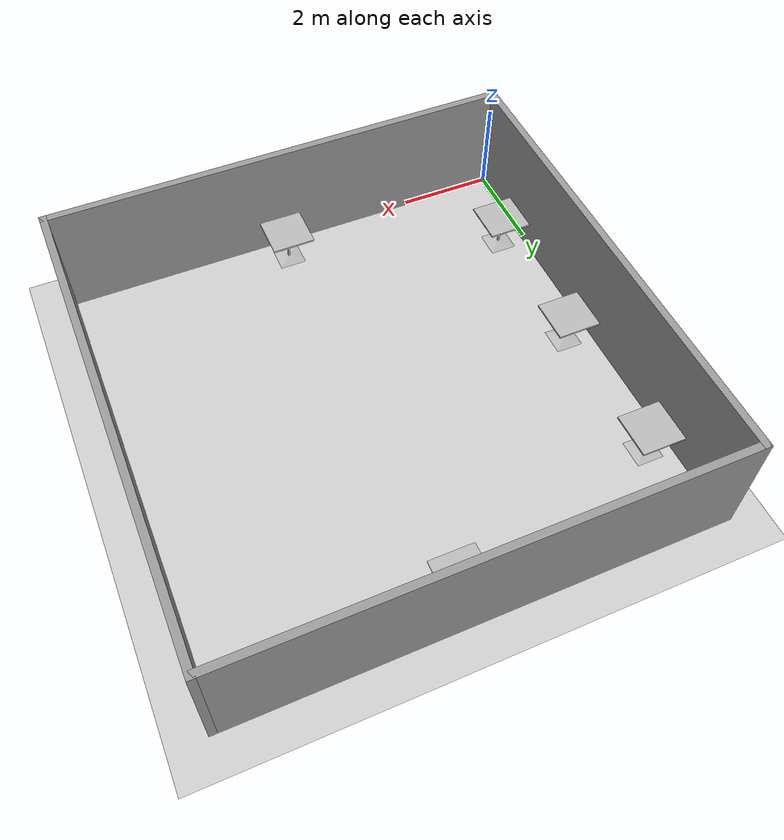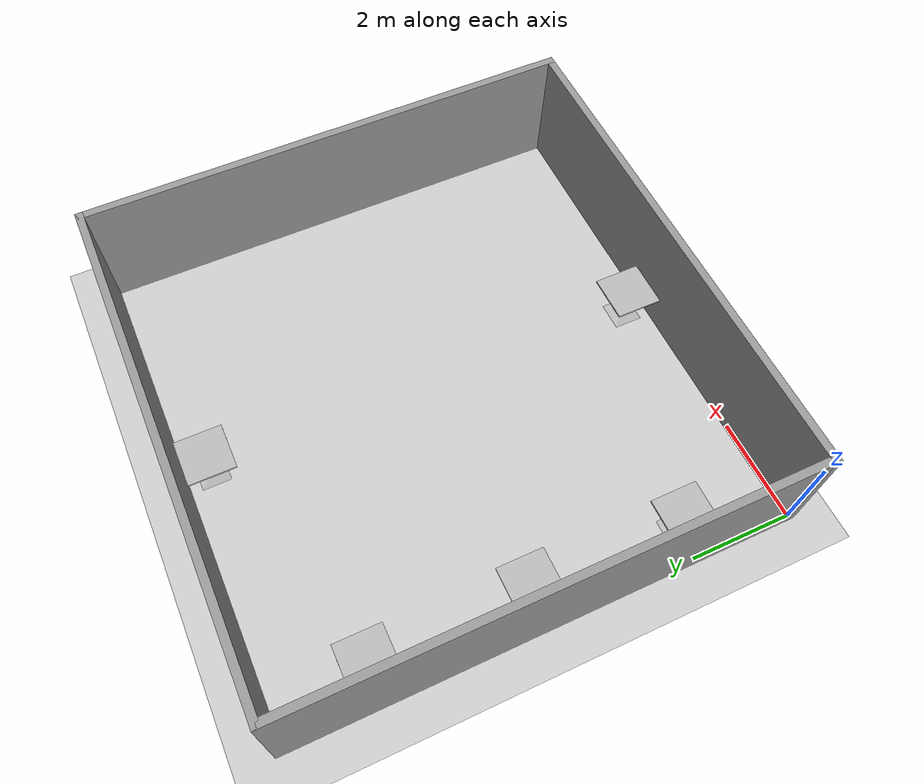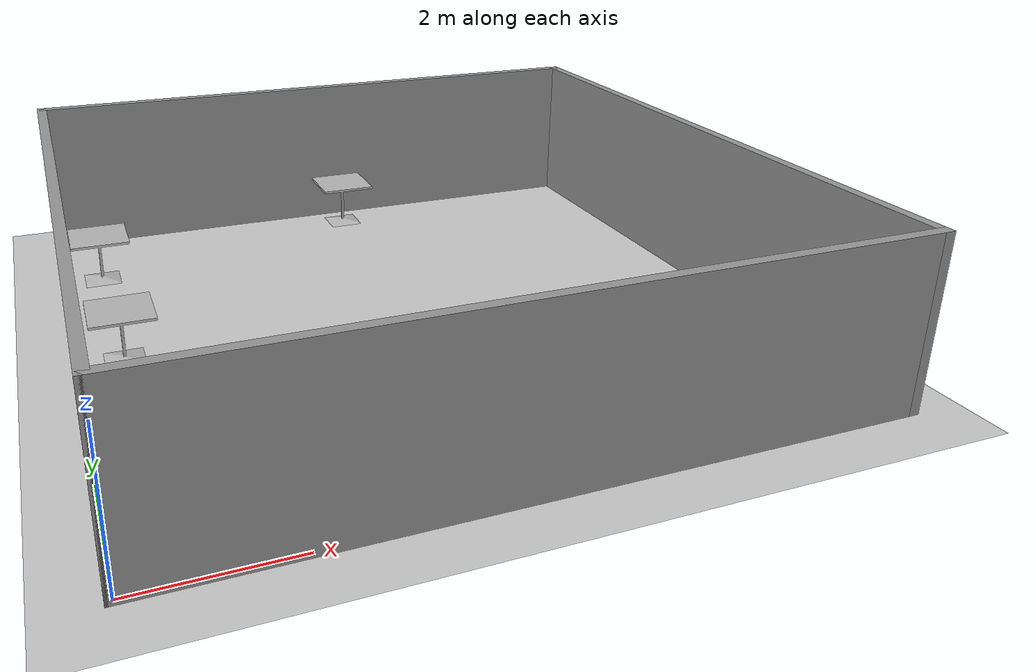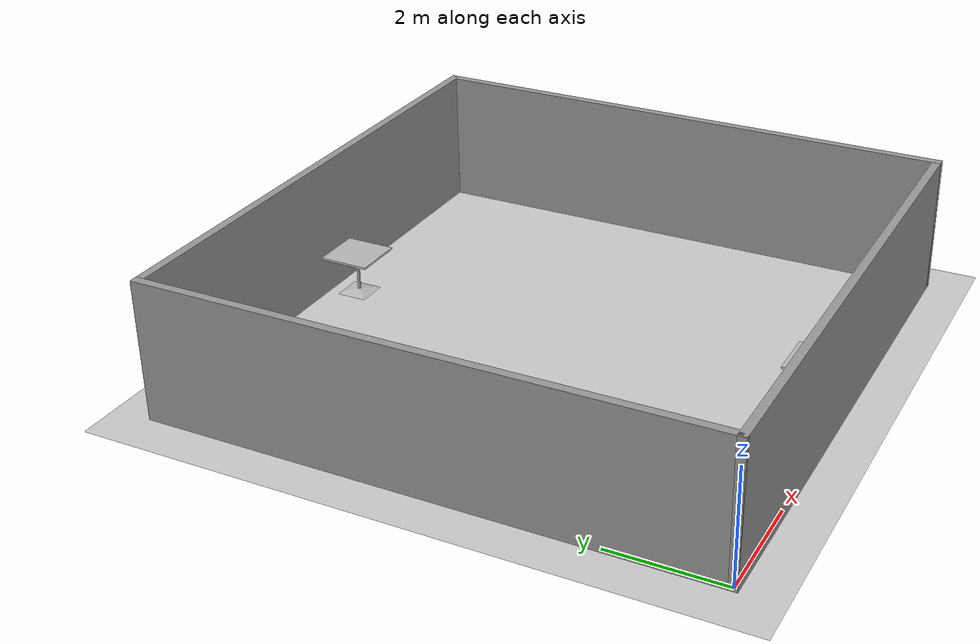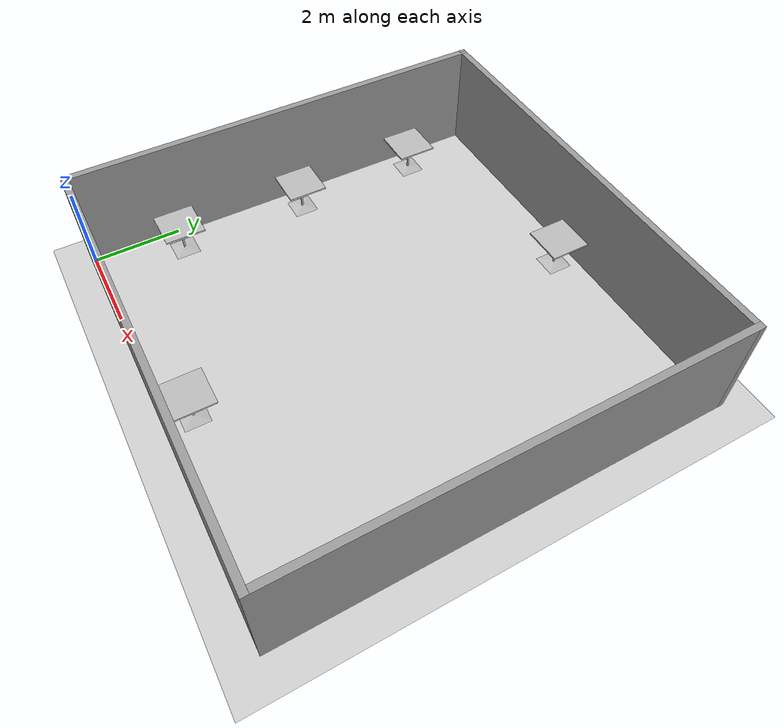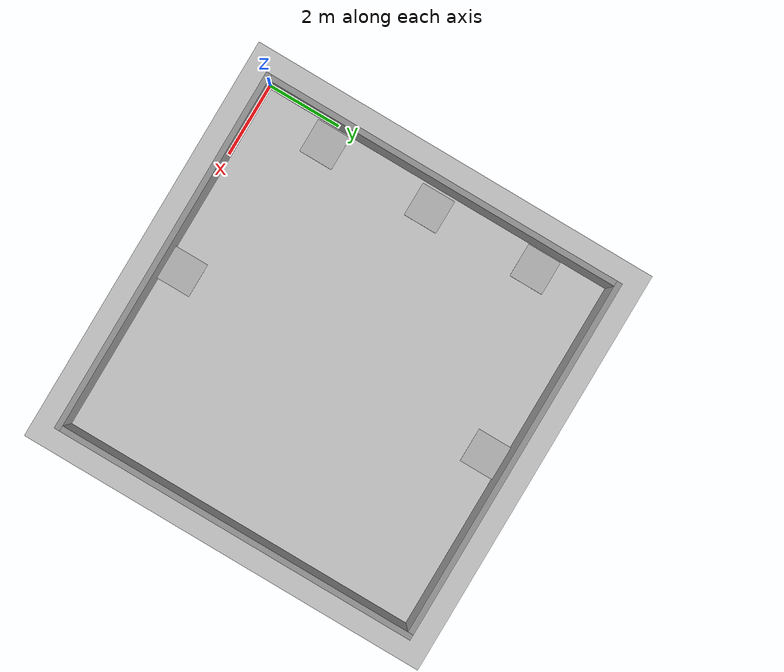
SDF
<sdf version="1.6">
 <world name="default">
  <model name="ground_plane">
   <static>1</static>
   <link name="link">
    <collision name="collision">
     <geometry><plane><normal>0 0 1</normal><size>100 100</size></plane></geometry>
     <surface><friction><ode><mu>100</mu><mu2>50</mu2></ode></friction></surface>
    </collision>
    <visual name="visual">
     <cast_shadows>0</cast_shadows>
     <geometry><plane><normal>0 0 1</normal><size>100 100</size></plane></geometry>
     <material>
      <script><uri>file://media/materials/scripts/gazebo.material</uri><name>Gazebo/Grey</name></script>
     </material>
    </visual>
   </link>
  </model>
  <light name="sun" type="directional">
   <pose>0 0 10 0 -0 0</pose>
   <diffuse>0.8 0.8 0.8 1</diffuse>
   <specular>0.1 0.1 0.1 1</specular>
   <attenuation>
    <range>1000</range>
    <constant>0.9</constant>
    <linear>0.01</linear>
    <quadratic>0.001</quadratic>
   </attenuation>
   <direction>-0.5 0.5 -1</direction>
  </light>
  <gravity>0 0 -9.8</gravity>
  <magnetic_field>6e-06 2.3e-05 -4.2e-05</magnetic_field>
  <atmosphere type="adiabatic"/>
  <physics name="default_physics" default="0" type="ode">
   <max_step_size>0.001</max_step_size>
   <real_time_factor>1</real_time_factor>
   <real_time_update_rate>1000</real_time_update_rate>
  </physics>
  <scene><ambient>0.4 0.4 0.4 1</ambient><background>0.7 0.7 0.7 1</background><shadows>1</shadows></scene>
  <spherical_coordinates>
   <surface_model>EARTH_WGS84</surface_model>
   <latitude_deg>0</latitude_deg>
   <longitude_deg>0</longitude_deg>
   <elevation>0</elevation>
   <heading_deg>0</heading_deg>
  </spherical_coordinates>
  <model name="Square_10x10">
   <pose>4.91877 4.91643 0 0 -0 0</pose>
   <link name="Wall_13">
    <collision name="Wall_13_Collision">
     <geometry><box><size>10 0.15 2.5</size></box></geometry>
     <pose>0 0 1.25 0 -0 0</pose>
    </collision>
    <visual name="Wall_13_Visual">
     <pose>0 0 1.25 0 -0 0</pose>
     <geometry><box><size>10 0.15 2.5</size></box></geometry>
     <material>
      <script><uri>file://media/materials/scripts/gazebo.material</uri><name>Gazebo/Grey</name></script>
      <ambient>1 1 1 1</ambient>
     </material>
    </visual>
    <pose>0 -4.925 0 0 -0 0</pose>
   </link>
   <link name="Wall_14">
    <collision name="Wall_14_Collision">
     <geometry><box><size>10 0.15 2.5</size></box></geometry>
     <pose>0 0 1.25 0 -0 0</pose>
    </collision>
    <visual name="Wall_14_Visual">
     <pose>0 0 1.25 0 -0 0</pose>
     <geometry><box><size>10 0.15 2.5</size></box></geometry>
     <material>
      <script><uri>file://media/materials/scripts/gazebo.material</uri><name>Gazebo/Grey</name></script>
      <ambient>1 1 1 1</ambient>
     </material>
    </visual>
    <pose>4.925 0 0 0 -0 1.5708</pose>
   </link>
   <link name="Wall_15">
    <collision name="Wall_15_Collision">
     <geometry><box><size>10 0.15 2.5</size></box></geometry>
     <pose>0 0 1.25 0 -0 0</pose>
    </collision>
    <visual name="Wall_15_Visual">
     <pose>0 0 1.25 0 -0 0</pose>
     <geometry><box><size>10 0.15 2.5</size></box></geometry>
     <material>
      <script><uri>file://media/materials/scripts/gazebo.material</uri><name>Gazebo/Grey</name></script>
      <ambient>1 1 1 1</ambient>
     </material>
    </visual>
    <pose>0 4.925 0 0 -0 3.14159</pose>
   </link>
   <link name="Wall_9">
    <collision name="Wall_9_Collision">
     <geometry><box><size>10 0.15 2.5</size></box></geometry>
     <pose>0 0 1.25 0 -0 0</pose>
    </collision>
    <visual name="Wall_9_Visual">
     <pose>0 0 1.25 0 -0 0</pose>
     <geometry><box><size>10 0.15 2.5</size></box></geometry>
     <material>
      <script><uri>file://media/materials/scripts/gazebo.material</uri><name>Gazebo/Grey</name></script>
      <ambient>1 1 1 1</ambient>
     </material>
    </visual>
    <pose>-4.925 0 0 0 -0 1.5708</pose>
   </link>
   <static>1</static>
  </model>
  <model name="cafe_table">
   <static>1</static>
   <link name="link">
    <collision name="surface">
     <pose>0 0 0.755 0 -0 0</pose>
     <geometry><box><size>0.913 0.913 0.04</size></box></geometry>
    </collision>
    <collision name="column">
     <pose>0 0 0.37 0 -0 0</pose>
     <geometry><box><size>0.042 0.042 0.74</size></box></geometry>
    </collision>
    <collision name="base">
     <pose>0 0 0.02 0 -0 0</pose>
     <geometry><box><size>0.56 0.56 0.04</size></box></geometry>
    </collision>
    <visual name="visual">
     <geometry><mesh><uri>model://cafe_table/meshes/cafe_table.dae</uri><scale>1 1 1</scale></mesh></geometry>
    </visual>
   </link>
   <pose>0.605734 1.95732 0 0 -0 0</pose>
  </model>
  <model name="cafe_table_clone">
   <static>1</static>
   <link name="link">
    <collision name="surface">
     <pose>0 0 0.755 0 -0 0</pose>
     <geometry><box><size>0.913 0.913 0.04</size></box></geometry>
    </collision>
    <collision name="column">
     <pose>0 0 0.37 0 -0 0</pose>
     <geometry><box><size>0.042 0.042 0.74</size></box></geometry>
    </collision>
    <collision name="base">
     <pose>0 0 0.02 0 -0 0</pose>
     <geometry><box><size>0.56 0.56 0.04</size></box></geometry>
    </collision>
    <visual name="visual">
     <geometry><mesh><uri>model://cafe_table/meshes/cafe_table.dae</uri><scale>1 1 1</scale></mesh></geometry>
    </visual>
   </link>
   <pose>0.634669 4.98085 0 0 -0 0</pose>
  </model>
  <model name="cafe_table_clone_0">
   <static>1</static>
   <link name="link">
    <collision name="surface">
     <pose>0 0 0.755 0 -0 0</pose>
     <geometry><box><size>0.913 0.913 0.04</size></box></geometry>
    </collision>
    <collision name="column">
     <pose>0 0 0.37 0 -0 0</pose>
     <geometry><box><size>0.042 0.042 0.74</size></box></geometry>
    </collision>
    <collision name="base">
     <pose>0 0 0.02 0 -0 0</pose>
     <geometry><box><size>0.56 0.56 0.04</size></box></geometry>
    </collision>
    <visual name="visual">
     <geometry><mesh><uri>model://cafe_table/meshes/cafe_table.dae</uri><scale>1 1 1</scale></mesh></geometry>
    </visual>
   </link>
   <pose>0.588723 7.9943 0 0 -0 0</pose>
  </model>
  <model name="cafe_table_clone_1">
   <static>1</static>
   <link name="link">
    <collision name="surface">
     <pose>0 0 0.755 0 -0 0</pose>
     <geometry><box><size>0.913 0.913 0.04</size></box></geometry>
    </collision>
    <collision name="column">
     <pose>0 0 0.37 0 -0 0</pose>
     <geometry><box><size>0.042 0.042 0.74</size></box></geometry>
    </collision>
    <collision name="base">
     <pose>0 0 0.02 0 -0 0</pose>
     <geometry><box><size>0.56 0.56 0.04</size></box></geometry>
    </collision>
    <visual name="visual">
     <geometry><mesh><uri>model://cafe_table/meshes/cafe_table.dae</uri><scale>1 1 1</scale></mesh></geometry>
    </visual>
   </link>
   <pose>5.09735 0.540435 0 0 -0 0</pose>
  </model>
  <model name="cafe_table_clone_2">
   <static>1</static>
   <link name="link">
    <collision name="surface">
     <pose>0 0 0.755 0 -0 0</pose>
     <geometry><box><size>0.913 0.913 0.04</size></box></geometry>
    </collision>
    <collision name="column">
     <pose>0 0 0.37 0 -0 0</pose>
     <geometry><box><size>0.042 0.042 0.74</size></box></geometry>
    </collision>
    <collision name="base">
     <pose>0 0 0.02 0 -0 0</pose>
     <geometry><box><size>0.56 0.56 0.04</size></box></geometry>
    </collision>
    <visual name="visual">
     <geometry><mesh><uri>model://cafe_table/meshes/cafe_table.dae</uri><scale>1 1 1</scale></mesh></geometry>
    </visual>
   </link>
   <pose>5.1365 9.27955 0 0 -0 0</pose>
  </model>
 </world>
</sdf>
